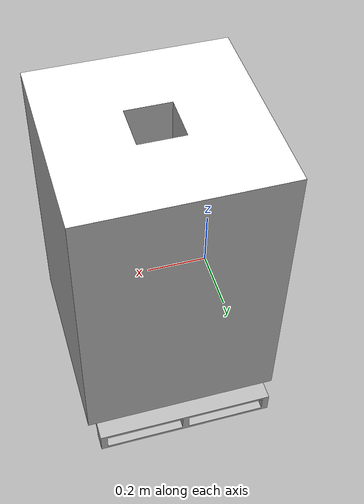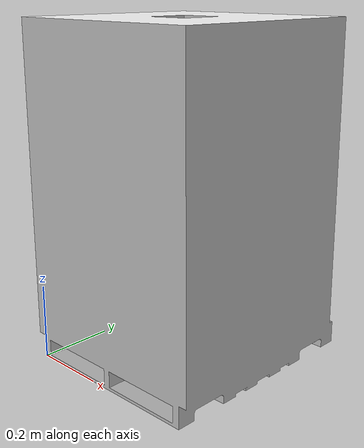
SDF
<?xml version="1.0" ?>
<sdf version="1.5">
  <model name="skid_udine_protective_shippers">
    <static>true</static>
    <link name="skid_udine_protective_shippers_link">
        <collision name="skid_udine_protective_shippers_collision">
         <geometry>
            <mesh>
                <uri>model://skid_udine_protective_shippers/meshes/model.dae</uri>
                <scale>0.5 0.5 0.5</scale>
            </mesh>
        </geometry>
      </collision>

      <visual name="skid_udine_protective_shippers_mesh">
        <cast_shadows>true</cast_shadows>
        <geometry>
            <mesh>
                <uri>model://skid_udine_protective_shippers/meshes/model.dae</uri>
                <scale>0.5 0.5 0.5</scale>
            </mesh>
        </geometry>
      </visual>
    </link>
  </model>
</sdf>
